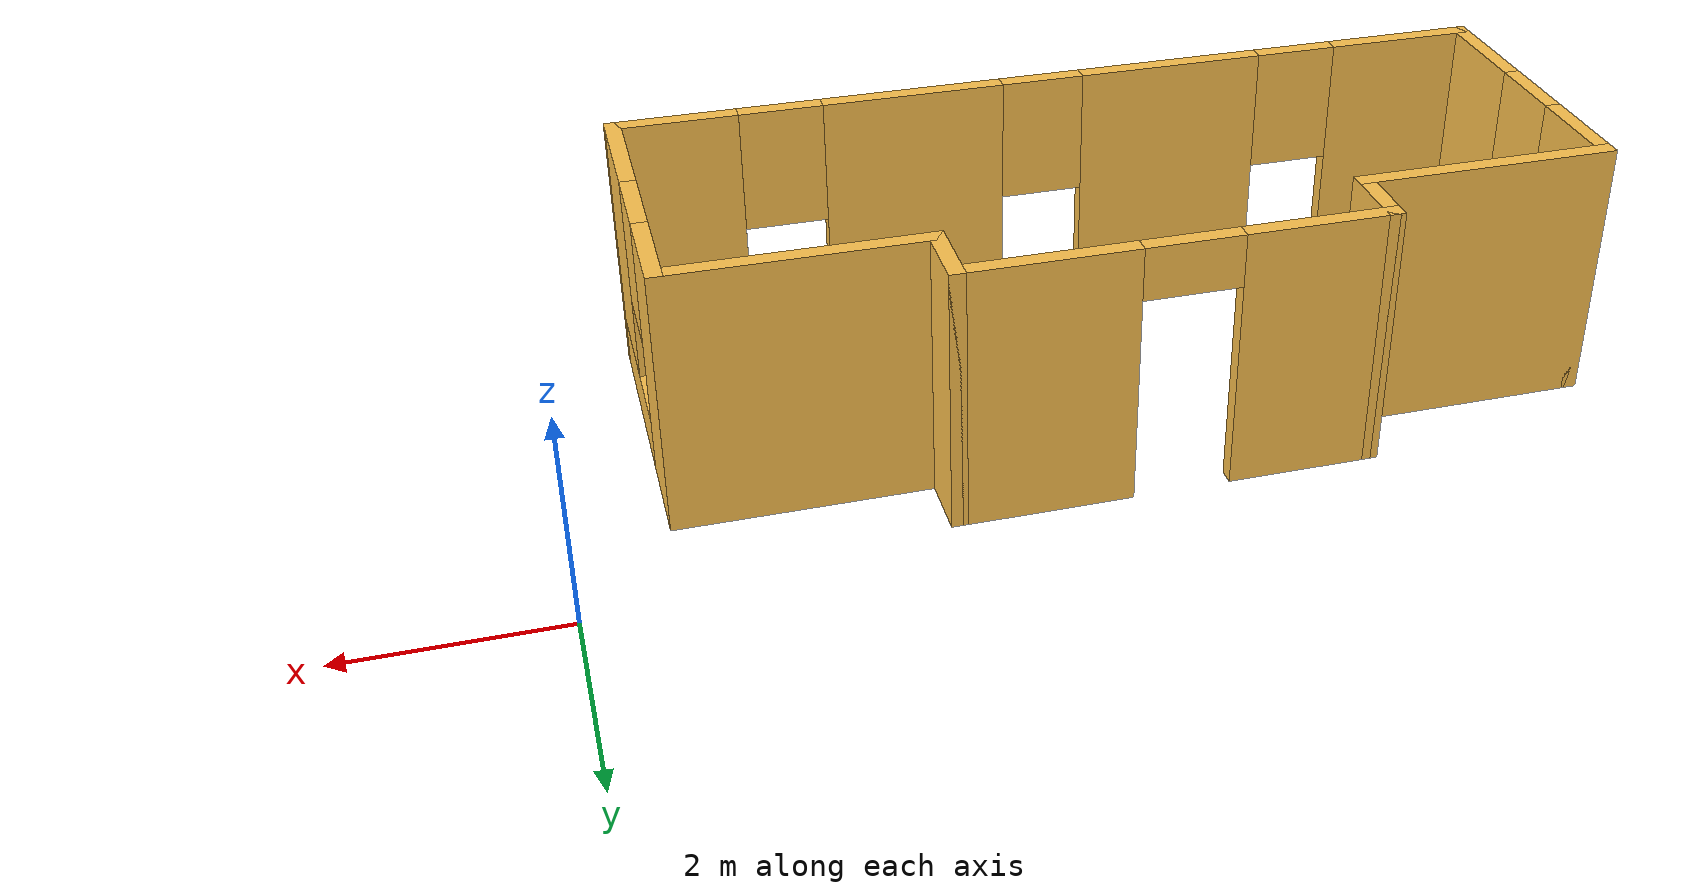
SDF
<?xml version='1.0'?>
<sdf version='1.6'>
  <model name='building'>
    <pose frame=''>-5.22651 -2.25255 0 0 -0 0</pose>
    <link name='Wall_10'>
      <pose frame=''>0 -1.725 0 0 -0 3.14159</pose>
      <visual name='Wall_10_Visual_0'>
        <pose frame=''>-3.73503 0 1.25 0 -0 0</pose>
        <geometry>
          <box>
            <size>1.22994 0.15 2.5</size>
          </box>
        </geometry>
        <material>
          <script>
            <uri>file://media/materials/scripts/gazebo.material</uri>
            <name>Gazebo/Grey</name>
          </script>
          <ambient>1 0.764706 0.305882 1</ambient>
        </material>
        <meta>
          <layer>0</layer>
        </meta>
      </visual>
      <collision name='Wall_10_Collision_0'>
        <geometry>
          <box>
            <size>1.22994 0.15 2.5</size>
          </box>
        </geometry>
        <pose frame=''>-3.73503 0 1.25 0 -0 0</pose>
      </collision>
      <visual name='Wall_10_Visual_1'>
        <pose frame=''>0.614971 0 0.25 0 -0 0</pose>
        <geometry>
          <box>
            <size>7.47006 0.15 0.5</size>
          </box>
        </geometry>
        <material>
          <script>
            <uri>file://media/materials/scripts/gazebo.material</uri>
            <name>Gazebo/Grey</name>
          </script>
          <ambient>1 0.764706 0.305882 1</ambient>
        </material>
        <meta>
          <layer>0</layer>
        </meta>
      </visual>
      <collision name='Wall_10_Collision_1'>
        <geometry>
          <box>
            <size>7.47006 0.15 0.5</size>
          </box>
        </geometry>
        <pose frame=''>0.614971 0 0.25 0 -0 0</pose>
      </collision>
      <visual name='Wall_10_Visual_2'>
        <pose frame=''>-1.44328 0 1.5 0 -0 0</pose>
        <geometry>
          <box>
            <size>1.75355 0.15 2</size>
          </box>
        </geometry>
        <material>
          <script>
            <uri>file://media/materials/scripts/gazebo.material</uri>
            <name>Gazebo/Grey</name>
          </script>
          <ambient>1 0.764706 0.305882 1</ambient>
        </material>
        <meta>
          <layer>0</layer>
        </meta>
      </visual>
      <collision name='Wall_10_Collision_2'>
        <geometry>
          <box>
            <size>1.75355 0.15 2</size>
          </box>
        </geometry>
        <pose frame=''>-1.44328 0 1.5 0 -0 0</pose>
      </collision>
      <visual name='Wall_10_Visual_3'>
        <pose frame=''>1.14525 0 1.5 0 -0 0</pose>
        <geometry>
          <box>
            <size>1.82351 0.15 2</size>
          </box>
        </geometry>
        <material>
          <script>
            <uri>file://media/materials/scripts/gazebo.material</uri>
            <name>Gazebo/Grey</name>
          </script>
          <ambient>1 0.764706 0.305882 1</ambient>
        </material>
        <meta>
          <layer>0</layer>
        </meta>
      </visual>
      <collision name='Wall_10_Collision_3'>
        <geometry>
          <box>
            <size>1.82351 0.15 2</size>
          </box>
        </geometry>
        <pose frame=''>1.14525 0 1.5 0 -0 0</pose>
      </collision>
      <visual name='Wall_10_Visual_4'>
        <pose frame=''>3.6035 0 1.5 0 -0 0</pose>
        <geometry>
          <box>
            <size>1.493 0.15 2</size>
          </box>
        </geometry>
        <material>
          <script>
            <uri>file://media/materials/scripts/gazebo.material</uri>
            <name>Gazebo/Grey</name>
          </script>
          <ambient>1 0.764706 0.305882 1</ambient>
        </material>
        <meta>
          <layer>0</layer>
        </meta>
      </visual>
      <collision name='Wall_10_Collision_4'>
        <geometry>
          <box>
            <size>1.493 0.15 2</size>
          </box>
        </geometry>
        <pose frame=''>3.6035 0 1.5 0 -0 0</pose>
      </collision>
      <visual name='Wall_10_Visual_5'>
        <pose frame=''>-2.72006 0 1.9 0 -0 0</pose>
        <geometry>
          <box>
            <size>0.8 0.15 1.2</size>
          </box>
        </geometry>
        <material>
          <script>
            <uri>file://media/materials/scripts/gazebo.material</uri>
            <name>Gazebo/Grey</name>
          </script>
          <ambient>1 0.764706 0.305882 1</ambient>
        </material>
        <meta>
          <layer>0</layer>
        </meta>
      </visual>
      <collision name='Wall_10_Collision_5'>
        <geometry>
          <box>
            <size>0.8 0.15 1.2</size>
          </box>
        </geometry>
        <pose frame=''>-2.72006 0 1.9 0 -0 0</pose>
      </collision>
      <visual name='Wall_10_Visual_6'>
        <pose frame=''>-0.166508 0 1.9 0 -0 0</pose>
        <geometry>
          <box>
            <size>0.8 0.15 1.2</size>
          </box>
        </geometry>
        <material>
          <script>
            <uri>file://media/materials/scripts/gazebo.material</uri>
            <name>Gazebo/Grey</name>
          </script>
          <ambient>1 0.764706 0.305882 1</ambient>
        </material>
        <meta>
          <layer>0</layer>
        </meta>
      </visual>
      <collision name='Wall_10_Collision_6'>
        <geometry>
          <box>
            <size>0.8 0.15 1.2</size>
          </box>
        </geometry>
        <pose frame=''>-0.166508 0 1.9 0 -0 0</pose>
      </collision>
      <visual name='Wall_10_Visual_7'>
        <pose frame=''>2.457 0 1.9 0 -0 0</pose>
        <geometry>
          <box>
            <size>0.8 0.15 1.2</size>
          </box>
        </geometry>
        <material>
          <script>
            <uri>file://media/materials/scripts/gazebo.material</uri>
            <name>Gazebo/Grey</name>
          </script>
          <ambient>1 0.764706 0.305882 1</ambient>
        </material>
        <meta>
          <layer>0</layer>
        </meta>
      </visual>
      <collision name='Wall_10_Collision_7'>
        <geometry>
          <box>
            <size>0.8 0.15 1.2</size>
          </box>
        </geometry>
        <pose frame=''>2.457 0 1.9 0 -0 0</pose>
      </collision>
    </link>
    <link name='Wall_3'>
      <pose frame=''>-4.275 -0.3 0 0 -0 1.5708</pose>
      <visual name='Wall_3_Visual_0'>
        <pose frame=''>-0.917799 0 1.25 0 -0 0</pose>
        <geometry>
          <box>
            <size>1.1644 0.15 2.5</size>
          </box>
        </geometry>
        <material>
          <script>
            <uri>file://media/materials/scripts/gazebo.material</uri>
            <name>Gazebo/Grey</name>
          </script>
          <ambient>1 0.764706 0.305882 1</ambient>
        </material>
        <meta>
          <layer>0</layer>
        </meta>
      </visual>
      <collision name='Wall_3_Collision_0'>
        <geometry>
          <box>
            <size>1.1644 0.15 2.5</size>
          </box>
        </geometry>
        <pose frame=''>-0.917799 0 1.25 0 -0 0</pose>
      </collision>
      <visual name='Wall_3_Visual_1'>
        <pose frame=''>0.582201 0 0.25 0 -0 0</pose>
        <geometry>
          <box>
            <size>1.8356 0.15 0.5</size>
          </box>
        </geometry>
        <material>
          <script>
            <uri>file://media/materials/scripts/gazebo.material</uri>
            <name>Gazebo/Grey</name>
          </script>
          <ambient>1 0.764706 0.305882 1</ambient>
        </material>
        <meta>
          <layer>0</layer>
        </meta>
      </visual>
      <collision name='Wall_3_Collision_1'>
        <geometry>
          <box>
            <size>1.8356 0.15 0.5</size>
          </box>
        </geometry>
        <pose frame=''>0.582201 0 0.25 0 -0 0</pose>
      </collision>
      <visual name='Wall_3_Visual_2'>
        <pose frame=''>0.982201 0 1.5 0 -0 0</pose>
        <geometry>
          <box>
            <size>1.0356 0.15 2</size>
          </box>
        </geometry>
        <material>
          <script>
            <uri>file://media/materials/scripts/gazebo.material</uri>
            <name>Gazebo/Grey</name>
          </script>
          <ambient>1 0.764706 0.305882 1</ambient>
        </material>
        <meta>
          <layer>0</layer>
        </meta>
      </visual>
      <collision name='Wall_3_Collision_2'>
        <geometry>
          <box>
            <size>1.0356 0.15 2</size>
          </box>
        </geometry>
        <pose frame=''>0.982201 0 1.5 0 -0 0</pose>
      </collision>
      <visual name='Wall_3_Visual_3'>
        <pose frame=''>0.064403 0 1.9 0 -0 0</pose>
        <geometry>
          <box>
            <size>0.8 0.15 1.2</size>
          </box>
        </geometry>
        <material>
          <script>
            <uri>file://media/materials/scripts/gazebo.material</uri>
            <name>Gazebo/Grey</name>
          </script>
          <ambient>1 0.764706 0.305882 1</ambient>
        </material>
        <meta>
          <layer>0</layer>
        </meta>
      </visual>
      <collision name='Wall_3_Collision_3'>
        <geometry>
          <box>
            <size>0.8 0.15 1.2</size>
          </box>
        </geometry>
        <pose frame=''>0.064403 0 1.9 0 -0 0</pose>
      </collision>
    </link>
    <link name='Wall_4'>
      <collision name='Wall_4_Collision'>
        <geometry>
          <box>
            <size>2.5 0.15 2.5</size>
          </box>
        </geometry>
        <pose frame=''>0 0 1.25 0 -0 0</pose>
      </collision>
      <visual name='Wall_4_Visual'>
        <pose frame=''>0 0 1.25 0 -0 0</pose>
        <geometry>
          <box>
            <size>2.5 0.15 2.5</size>
          </box>
        </geometry>
        <material>
          <script>
            <uri>file://media/materials/scripts/gazebo.material</uri>
            <name>Gazebo/Grey</name>
          </script>
          <ambient>1 0.764706 0.305882 1</ambient>
        </material>
        <meta>
          <layer>0</layer>
        </meta>
      </visual>
      <pose frame=''>-3.1 1.125 0 0 -0 0</pose>
    </link>
    <link name='Wall_5'>
      <collision name='Wall_5_Collision'>
        <geometry>
          <box>
            <size>0.75 0.15 2.5</size>
          </box>
        </geometry>
        <pose frame=''>0 0 1.25 0 -0 0</pose>
      </collision>
      <visual name='Wall_5_Visual'>
        <pose frame=''>0 0 1.25 0 -0 0</pose>
        <geometry>
          <box>
            <size>0.75 0.15 2.5</size>
          </box>
        </geometry>
        <material>
          <script>
            <uri>file://media/materials/scripts/gazebo.material</uri>
            <name>Gazebo/Grey</name>
          </script>
          <ambient>1 0.764706 0.305882 1</ambient>
        </material>
        <meta>
          <layer>0</layer>
        </meta>
      </visual>
      <pose frame=''>-1.925 1.425 0 0 -0 1.5708</pose>
    </link>
    <link name='Wall_6'>
      <pose frame=''>0 1.725 0 0 -0 0</pose>
      <visual name='Wall_6_Visual_0'>
        <pose frame=''>-1.28167 0 1.25 0 -0 0</pose>
        <geometry>
          <box>
            <size>1.43667 0.15 2.5</size>
          </box>
        </geometry>
        <material>
          <script>
            <uri>file://media/materials/scripts/gazebo.material</uri>
            <name>Gazebo/Grey</name>
          </script>
          <ambient>1 0.764706 0.305882 1</ambient>
        </material>
        <meta>
          <layer>0</layer>
        </meta>
      </visual>
      <collision name='Wall_6_Collision_0'>
        <geometry>
          <box>
            <size>1.43667 0.15 2.5</size>
          </box>
        </geometry>
        <pose frame=''>-1.28167 0 1.25 0 -0 0</pose>
      </collision>
      <visual name='Wall_6_Visual_1'>
        <pose frame=''>1.16833 0 1.25 0 -0 0</pose>
        <geometry>
          <box>
            <size>1.66333 0.15 2.5</size>
          </box>
        </geometry>
        <material>
          <script>
            <uri>file://media/materials/scripts/gazebo.material</uri>
            <name>Gazebo/Grey</name>
          </script>
          <ambient>1 0.764706 0.305882 1</ambient>
        </material>
        <meta>
          <layer>0</layer>
        </meta>
      </visual>
      <collision name='Wall_6_Collision_1'>
        <geometry>
          <box>
            <size>1.66333 0.15 2.5</size>
          </box>
        </geometry>
        <pose frame=''>1.16833 0 1.25 0 -0 0</pose>
      </collision>
      <visual name='Wall_6_Visual_2'>
        <pose frame=''>-0.113333 0 2.25 0 -0 0</pose>
        <geometry>
          <box>
            <size>0.9 0.15 0.5</size>
          </box>
        </geometry>
        <material>
          <script>
            <uri>file://media/materials/scripts/gazebo.material</uri>
            <name>Gazebo/Grey</name>
          </script>
          <ambient>1 0.764706 0.305882 1</ambient>
        </material>
        <meta>
          <layer>0</layer>
        </meta>
      </visual>
      <collision name='Wall_6_Collision_2'>
        <geometry>
          <box>
            <size>0.9 0.15 0.5</size>
          </box>
        </geometry>
        <pose frame=''>-0.113333 0 2.25 0 -0 0</pose>
      </collision>
    </link>
    <link name='Wall_7'>
      <collision name='Wall_7_Collision'>
        <geometry>
          <box>
            <size>0.75 0.15 2.5</size>
          </box>
        </geometry>
        <pose frame=''>0 0 1.25 0 -0 0</pose>
      </collision>
      <visual name='Wall_7_Visual'>
        <pose frame=''>0 0 1.25 0 -0 0</pose>
        <geometry>
          <box>
            <size>0.75 0.15 2.5</size>
          </box>
        </geometry>
        <material>
          <script>
            <uri>file://media/materials/scripts/gazebo.material</uri>
            <name>Gazebo/Grey</name>
          </script>
          <ambient>1 0.764706 0.305882 1</ambient>
        </material>
        <meta>
          <layer>0</layer>
        </meta>
      </visual>
      <pose frame=''>1.925 1.425 0 0 0 -1.5708</pose>
    </link>
    <link name='Wall_8'>
      <collision name='Wall_8_Collision'>
        <geometry>
          <box>
            <size>2.5 0.15 2.5</size>
          </box>
        </geometry>
        <pose frame=''>0 0 1.25 0 -0 0</pose>
      </collision>
      <visual name='Wall_8_Visual'>
        <pose frame=''>0 0 1.25 0 -0 0</pose>
        <geometry>
          <box>
            <size>2.5 0.15 2.5</size>
          </box>
        </geometry>
        <material>
          <script>
            <uri>file://media/materials/scripts/gazebo.material</uri>
            <name>Gazebo/Grey</name>
          </script>
          <ambient>1 0.764706 0.305882 1</ambient>
        </material>
        <meta>
          <layer>0</layer>
        </meta>
      </visual>
      <pose frame=''>3.1 1.125 0 0 -0 0</pose>
    </link>
    <link name='Wall_9'>
      <pose frame=''>4.275 -0.3 0 0 0 -1.5708</pose>
      <visual name='Wall_9_Visual_0'>
        <pose frame=''>-1.01718 0 1.25 0 -0 0</pose>
        <geometry>
          <box>
            <size>0.965637 0.15 2.5</size>
          </box>
        </geometry>
        <material>
          <script>
            <uri>file://media/materials/scripts/gazebo.material</uri>
            <name>Gazebo/Grey</name>
          </script>
          <ambient>1 0.764706 0.305882 1</ambient>
        </material>
        <meta>
          <layer>0</layer>
        </meta>
      </visual>
      <collision name='Wall_9_Collision_0'>
        <geometry>
          <box>
            <size>0.965637 0.15 2.5</size>
          </box>
        </geometry>
        <pose frame=''>-1.01718 0 1.25 0 -0 0</pose>
      </collision>
      <visual name='Wall_9_Visual_1'>
        <pose frame=''>0.482819 0 0.25 0 -0 0</pose>
        <geometry>
          <box>
            <size>2.03436 0.15 0.5</size>
          </box>
        </geometry>
        <material>
          <script>
            <uri>file://media/materials/scripts/gazebo.material</uri>
            <name>Gazebo/Grey</name>
          </script>
          <ambient>1 0.764706 0.305882 1</ambient>
        </material>
        <meta>
          <layer>0</layer>
        </meta>
      </visual>
      <collision name='Wall_9_Collision_1'>
        <geometry>
          <box>
            <size>2.03436 0.15 0.5</size>
          </box>
        </geometry>
        <pose frame=''>0.482819 0 0.25 0 -0 0</pose>
      </collision>
      <visual name='Wall_9_Visual_2'>
        <pose frame=''>0.882819 0 1.5 0 -0 0</pose>
        <geometry>
          <box>
            <size>1.23436 0.15 2</size>
          </box>
        </geometry>
        <material>
          <script>
            <uri>file://media/materials/scripts/gazebo.material</uri>
            <name>Gazebo/Grey</name>
          </script>
          <ambient>1 0.764706 0.305882 1</ambient>
        </material>
        <meta>
          <layer>0</layer>
        </meta>
      </visual>
      <collision name='Wall_9_Collision_2'>
        <geometry>
          <box>
            <size>1.23436 0.15 2</size>
          </box>
        </geometry>
        <pose frame=''>0.882819 0 1.5 0 -0 0</pose>
      </collision>
      <visual name='Wall_9_Visual_3'>
        <pose frame=''>-0.134363 0 1.9 0 -0 0</pose>
        <geometry>
          <box>
            <size>0.8 0.15 1.2</size>
          </box>
        </geometry>
        <material>
          <script>
            <uri>file://media/materials/scripts/gazebo.material</uri>
            <name>Gazebo/Grey</name>
          </script>
          <ambient>1 0.764706 0.305882 1</ambient>
        </material>
        <meta>
          <layer>0</layer>
        </meta>
      </visual>
      <collision name='Wall_9_Collision_3'>
        <geometry>
          <box>
            <size>0.8 0.15 1.2</size>
          </box>
        </geometry>
        <pose frame=''>-0.134363 0 1.9 0 -0 0</pose>
      </collision>
    </link>
    <static>1</static>
  </model>
</sdf>
